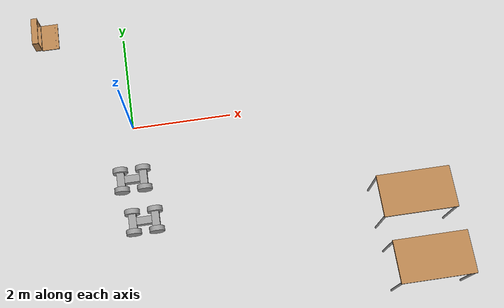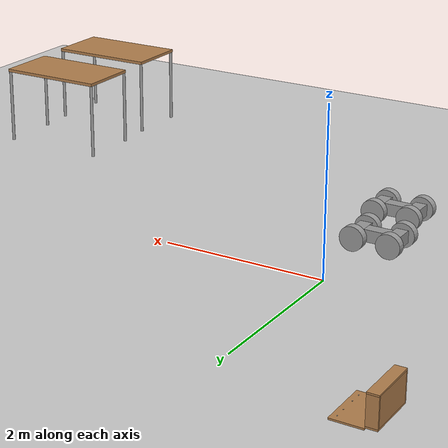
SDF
<sdf version="1.6">
 <world name="default">
  <model name="ground_plane">
   <static>1</static>
   <link name="link">
    <collision name="collision">
     <geometry><plane><normal>0 0 1</normal><size>100 100</size></plane></geometry>
     <surface><friction><ode><mu>100</mu><mu2>50</mu2></ode></friction></surface>
    </collision>
    <visual name="visual">
     <cast_shadows>0</cast_shadows>
     <geometry><plane><normal>0 0 1</normal><size>100 100</size></plane></geometry>
     <material>
      <script><uri>file://media/materials/scripts/gazebo.material</uri><name>Gazebo/Grey</name></script>
     </material>
    </visual>
   </link>
  </model>
  <model name="robot">
   <link name="link_0">
    <pose>-0.225 0 0 0 -0 0</pose>
    <inertial>
     <mass>1</mass>
     <inertia>
      <ixx>0.166667</ixx>
      <ixy>0</ixy>
      <ixz>0</ixz>
      <iyy>0.166667</iyy>
      <iyz>0</iyz>
      <izz>0.166667</izz>
     </inertia>
    </inertial>
    <visual name="visual">
     <geometry><box><size>0.15 0.3 0.15</size></box></geometry>
     <material>
      <lighting>1</lighting>
      <script><uri>file://media/materials/scripts/gazebo.material</uri><name>Gazebo/Grey</name></script>
      <ambient>0.3 0.3 0.3 1</ambient>
      <diffuse>0.7 0.7 0.7 1</diffuse>
      <specular>0.01 0.01 0.01 1</specular>
      <emissive>0 0 0 1</emissive>
      <shader type="vertex"><normal_map>__default__</normal_map></shader>
     </material>
    </visual>
    <collision name="collision">
     <geometry><box><size>0.15 0.3 0.15</size></box></geometry>
     <surface>
      <friction>
       <ode><mu>1</mu><mu2>1</mu2><fdir1>0 0 0</fdir1><slip1>0</slip1><slip2>0</slip2></ode>
       <torsional>
        <coefficient>1</coefficient>
        <patch_radius>0</patch_radius>
        <surface_radius>0</surface_radius>
        <use_patch_radius>1</use_patch_radius>
        <ode><slip>0</slip></ode>
       </torsional>
      </friction>
      <bounce><restitution_coefficient>0</restitution_coefficient><threshold>1e+06</threshold></bounce>
      <contact>
       <collide_without_contact>0</collide_without_contact>
       <collide_without_contact_bitmask>1</collide_without_contact_bitmask>
       <collide_bitmask>1</collide_bitmask>
       <ode>
        <soft_cfm>0</soft_cfm>
        <soft_erp>0.2</soft_erp>
        <kp>1e+13</kp>
        <kd>1</kd>
        <max_vel>0.01</max_vel>
        <min_depth>0</min_depth>
       </ode>
       <bullet>
        <split_impulse>1</split_impulse>
        <split_impulse_penetration_threshold>-0.01</split_impulse_penetration_threshold>
        <soft_cfm>0</soft_cfm>
        <soft_erp>0.2</soft_erp>
        <kp>1e+13</kp>
        <kd>1</kd>
       </bullet>
      </contact>
     </surface>
    </collision>
   </link>
   <link name="link_0_clone">
    <pose>0.225 0 0 0 -0 0</pose>
    <inertial>
     <mass>1</mass>
     <inertia>
      <ixx>0.166667</ixx>
      <ixy>0</ixy>
      <ixz>0</ixz>
      <iyy>0.166667</iyy>
      <iyz>0</iyz>
      <izz>0.166667</izz>
     </inertia>
    </inertial>
    <visual name="visual">
     <geometry><box><size>0.15 0.3 0.15</size></box></geometry>
     <material>
      <lighting>1</lighting>
      <script><uri>file://media/materials/scripts/gazebo.material</uri><name>Gazebo/Grey</name></script>
      <ambient>0.3 0.3 0.3 1</ambient>
      <diffuse>0.7 0.7 0.7 1</diffuse>
      <specular>0.01 0.01 0.01 1</specular>
      <emissive>0 0 0 1</emissive>
      <shader type="vertex"><normal_map>__default__</normal_map></shader>
     </material>
    </visual>
    <collision name="collision">
     <geometry><box><size>0.15 0.3 0.15</size></box></geometry>
     <surface>
      <friction>
       <ode><mu>1</mu><mu2>1</mu2><fdir1>0 0 0</fdir1><slip1>0</slip1><slip2>0</slip2></ode>
       <torsional>
        <coefficient>1</coefficient>
        <patch_radius>0</patch_radius>
        <surface_radius>0</surface_radius>
        <use_patch_radius>1</use_patch_radius>
        <ode><slip>0</slip></ode>
       </torsional>
      </friction>
      <bounce><restitution_coefficient>0</restitution_coefficient><threshold>1e+06</threshold></bounce>
      <contact>
       <collide_without_contact>0</collide_without_contact>
       <collide_without_contact_bitmask>1</collide_without_contact_bitmask>
       <collide_bitmask>1</collide_bitmask>
       <ode>
        <soft_cfm>0</soft_cfm>
        <soft_erp>0.2</soft_erp>
        <kp>1e+13</kp>
        <kd>1</kd>
        <max_vel>0.01</max_vel>
        <min_depth>0</min_depth>
       </ode>
       <bullet>
        <split_impulse>1</split_impulse>
        <split_impulse_penetration_threshold>-0.01</split_impulse_penetration_threshold>
        <soft_cfm>0</soft_cfm>
        <soft_erp>0.2</soft_erp>
        <kp>1e+13</kp>
        <kd>1</kd>
       </bullet>
      </contact>
     </surface>
    </collision>
   </link>
   <link name="link_1">
    <inertial>
     <mass>1</mass>
     <inertia>
      <ixx>0.166667</ixx>
      <ixy>0</ixy>
      <ixz>0</ixz>
      <iyy>0.166667</iyy>
      <iyz>0</iyz>
      <izz>0.166667</izz>
     </inertia>
    </inertial>
    <visual name="visual">
     <geometry><box><size>0.3 0.15 0.15</size></box></geometry>
     <material>
      <lighting>1</lighting>
      <script><uri>file://media/materials/scripts/gazebo.material</uri><name>Gazebo/Grey</name></script>
      <ambient>0.3 0.3 0.3 1</ambient>
      <diffuse>0.7 0.7 0.7 1</diffuse>
      <specular>0.01 0.01 0.01 1</specular>
      <emissive>0 0 0 1</emissive>
      <shader type="vertex"><normal_map>__default__</normal_map></shader>
     </material>
    </visual>
    <collision name="collision">
     <geometry><box><size>0.3 0.15 0.15</size></box></geometry>
     <surface>
      <friction>
       <ode><mu>1</mu><mu2>1</mu2><fdir1>0 0 0</fdir1><slip1>0</slip1><slip2>0</slip2></ode>
       <torsional>
        <coefficient>1</coefficient>
        <patch_radius>0</patch_radius>
        <surface_radius>0</surface_radius>
        <use_patch_radius>1</use_patch_radius>
        <ode><slip>0</slip></ode>
       </torsional>
      </friction>
      <bounce><restitution_coefficient>0</restitution_coefficient><threshold>1e+06</threshold></bounce>
      <contact>
       <collide_without_contact>0</collide_without_contact>
       <collide_without_contact_bitmask>1</collide_without_contact_bitmask>
       <collide_bitmask>1</collide_bitmask>
       <ode>
        <soft_cfm>0</soft_cfm>
        <soft_erp>0.2</soft_erp>
        <kp>1e+13</kp>
        <kd>1</kd>
        <max_vel>0.01</max_vel>
        <min_depth>0</min_depth>
       </ode>
       <bullet>
        <split_impulse>1</split_impulse>
        <split_impulse_penetration_threshold>-0.01</split_impulse_penetration_threshold>
        <soft_cfm>0</soft_cfm>
        <soft_erp>0.2</soft_erp>
        <kp>1e+13</kp>
        <kd>1</kd>
       </bullet>
      </contact>
     </surface>
    </collision>
   </link>
   <link name="link_2">
    <pose>-0.225 -0.200001 0 1.5708 -0 0</pose>
    <inertial>
     <mass>1</mass>
     <inertia><ixx>0.145833</ixx><ixy>0</ixy><ixz>0</ixz><iyy>0.145833</iyy><iyz>0</iyz><izz>0.125</izz></inertia>
    </inertial>
    <visual name="visual">
     <geometry><cylinder><radius>0.15</radius><length>0.1</length></cylinder></geometry>
     <material>
      <lighting>1</lighting>
      <script><uri>file://media/materials/scripts/gazebo.material</uri><name>Gazebo/Grey</name></script>
      <ambient>0.3 0.3 0.3 1</ambient>
      <diffuse>0.7 0.7 0.7 1</diffuse>
      <specular>0.01 0.01 0.01 1</specular>
      <emissive>0 0 0 1</emissive>
      <shader type="vertex"><normal_map>__default__</normal_map></shader>
     </material>
    </visual>
    <collision name="collision">
     <geometry><cylinder><radius>0.15</radius><length>0.1</length></cylinder></geometry>
     <surface>
      <friction>
       <ode><mu>1</mu><mu2>1</mu2><fdir1>0 0 0</fdir1><slip1>0</slip1><slip2>0</slip2></ode>
       <torsional>
        <coefficient>1</coefficient>
        <patch_radius>0</patch_radius>
        <surface_radius>0</surface_radius>
        <use_patch_radius>1</use_patch_radius>
        <ode><slip>0</slip></ode>
       </torsional>
      </friction>
      <bounce><restitution_coefficient>0</restitution_coefficient><threshold>1e+06</threshold></bounce>
      <contact>
       <collide_without_contact>0</collide_without_contact>
       <collide_without_contact_bitmask>1</collide_without_contact_bitmask>
       <collide_bitmask>1</collide_bitmask>
       <ode>
        <soft_cfm>0</soft_cfm>
        <soft_erp>0.2</soft_erp>
        <kp>1e+13</kp>
        <kd>1</kd>
        <max_vel>0.01</max_vel>
        <min_depth>0</min_depth>
       </ode>
       <bullet>
        <split_impulse>1</split_impulse>
        <split_impulse_penetration_threshold>-0.01</split_impulse_penetration_threshold>
        <soft_cfm>0</soft_cfm>
        <soft_erp>0.2</soft_erp>
        <kp>1e+13</kp>
        <kd>1</kd>
       </bullet>
      </contact>
     </surface>
    </collision>
   </link>
   <link name="link_2_clone">
    <pose>0.225 -0.200001 0 1.5708 -0 0</pose>
    <inertial>
     <mass>1</mass>
     <inertia><ixx>0.145833</ixx><ixy>0</ixy><ixz>0</ixz><iyy>0.145833</iyy><iyz>0</iyz><izz>0.125</izz></inertia>
    </inertial>
    <visual name="visual">
     <geometry><cylinder><radius>0.15</radius><length>0.1</length></cylinder></geometry>
     <material>
      <lighting>1</lighting>
      <script><uri>file://media/materials/scripts/gazebo.material</uri><name>Gazebo/Grey</name></script>
      <ambient>0.3 0.3 0.3 1</ambient>
      <diffuse>0.7 0.7 0.7 1</diffuse>
      <specular>0.01 0.01 0.01 1</specular>
      <emissive>0 0 0 1</emissive>
      <shader type="vertex"><normal_map>__default__</normal_map></shader>
     </material>
    </visual>
    <collision name="collision">
     <geometry><cylinder><radius>0.15</radius><length>0.1</length></cylinder></geometry>
     <surface>
      <friction>
       <ode><mu>1</mu><mu2>1</mu2><fdir1>0 0 0</fdir1><slip1>0</slip1><slip2>0</slip2></ode>
       <torsional>
        <coefficient>1</coefficient>
        <patch_radius>0</patch_radius>
        <surface_radius>0</surface_radius>
        <use_patch_radius>1</use_patch_radius>
        <ode><slip>0</slip></ode>
       </torsional>
      </friction>
      <bounce><restitution_coefficient>0</restitution_coefficient><threshold>1e+06</threshold></bounce>
      <contact>
       <collide_without_contact>0</collide_without_contact>
       <collide_without_contact_bitmask>1</collide_without_contact_bitmask>
       <collide_bitmask>1</collide_bitmask>
       <ode>
        <soft_cfm>0</soft_cfm>
        <soft_erp>0.2</soft_erp>
        <kp>1e+13</kp>
        <kd>1</kd>
        <max_vel>0.01</max_vel>
        <min_depth>0</min_depth>
       </ode>
       <bullet>
        <split_impulse>1</split_impulse>
        <split_impulse_penetration_threshold>-0.01</split_impulse_penetration_threshold>
        <soft_cfm>0</soft_cfm>
        <soft_erp>0.2</soft_erp>
        <kp>1e+13</kp>
        <kd>1</kd>
       </bullet>
      </contact>
     </surface>
    </collision>
   </link>
   <link name="link_2_clone_0">
    <pose>-0.225 0.200001 0 1.5708 -0 0</pose>
    <inertial>
     <mass>1</mass>
     <inertia><ixx>0.145833</ixx><ixy>0</ixy><ixz>0</ixz><iyy>0.145833</iyy><iyz>0</iyz><izz>0.125</izz></inertia>
    </inertial>
    <visual name="visual">
     <geometry><cylinder><radius>0.15</radius><length>0.1</length></cylinder></geometry>
     <material>
      <lighting>1</lighting>
      <script><uri>file://media/materials/scripts/gazebo.material</uri><name>Gazebo/Grey</name></script>
      <ambient>0.3 0.3 0.3 1</ambient>
      <diffuse>0.7 0.7 0.7 1</diffuse>
      <specular>0.01 0.01 0.01 1</specular>
      <emissive>0 0 0 1</emissive>
      <shader type="vertex"><normal_map>__default__</normal_map></shader>
     </material>
    </visual>
    <collision name="collision">
     <geometry><cylinder><radius>0.15</radius><length>0.1</length></cylinder></geometry>
     <surface>
      <friction>
       <ode><mu>1</mu><mu2>1</mu2><fdir1>0 0 0</fdir1><slip1>0</slip1><slip2>0</slip2></ode>
       <torsional>
        <coefficient>1</coefficient>
        <patch_radius>0</patch_radius>
        <surface_radius>0</surface_radius>
        <use_patch_radius>1</use_patch_radius>
        <ode><slip>0</slip></ode>
       </torsional>
      </friction>
      <bounce><restitution_coefficient>0</restitution_coefficient><threshold>1e+06</threshold></bounce>
      <contact>
       <collide_without_contact>0</collide_without_contact>
       <collide_without_contact_bitmask>1</collide_without_contact_bitmask>
       <collide_bitmask>1</collide_bitmask>
       <ode>
        <soft_cfm>0</soft_cfm>
        <soft_erp>0.2</soft_erp>
        <kp>1e+13</kp>
        <kd>1</kd>
        <max_vel>0.01</max_vel>
        <min_depth>0</min_depth>
       </ode>
       <bullet>
        <split_impulse>1</split_impulse>
        <split_impulse_penetration_threshold>-0.01</split_impulse_penetration_threshold>
        <soft_cfm>0</soft_cfm>
        <soft_erp>0.2</soft_erp>
        <kp>1e+13</kp>
        <kd>1</kd>
       </bullet>
      </contact>
     </surface>
    </collision>
   </link>
   <link name="link_2_clone_1">
    <pose>0.225 0.200001 0 1.5708 -0 0</pose>
    <inertial>
     <mass>1</mass>
     <inertia><ixx>0.145833</ixx><ixy>0</ixy><ixz>0</ixz><iyy>0.145833</iyy><iyz>0</iyz><izz>0.125</izz></inertia>
    </inertial>
    <visual name="visual">
     <geometry><cylinder><radius>0.15</radius><length>0.1</length></cylinder></geometry>
     <material>
      <lighting>1</lighting>
      <script><uri>file://media/materials/scripts/gazebo.material</uri><name>Gazebo/Grey</name></script>
      <ambient>0.3 0.3 0.3 1</ambient>
      <diffuse>0.7 0.7 0.7 1</diffuse>
      <specular>0.01 0.01 0.01 1</specular>
      <emissive>0 0 0 1</emissive>
      <shader type="vertex"><normal_map>__default__</normal_map></shader>
     </material>
    </visual>
    <collision name="collision">
     <geometry><cylinder><radius>0.15</radius><length>0.1</length></cylinder></geometry>
     <surface>
      <friction>
       <ode><mu>1</mu><mu2>1</mu2><fdir1>0 0 0</fdir1><slip1>0</slip1><slip2>0</slip2></ode>
       <torsional>
        <coefficient>1</coefficient>
        <patch_radius>0</patch_radius>
        <surface_radius>0</surface_radius>
        <use_patch_radius>1</use_patch_radius>
        <ode><slip>0</slip></ode>
       </torsional>
      </friction>
      <bounce><restitution_coefficient>0</restitution_coefficient><threshold>1e+06</threshold></bounce>
      <contact>
       <collide_without_contact>0</collide_without_contact>
       <collide_without_contact_bitmask>1</collide_without_contact_bitmask>
       <collide_bitmask>1</collide_bitmask>
       <ode>
        <soft_cfm>0</soft_cfm>
        <soft_erp>0.2</soft_erp>
        <kp>1e+13</kp>
        <kd>1</kd>
        <max_vel>0.01</max_vel>
        <min_depth>0</min_depth>
       </ode>
       <bullet>
        <split_impulse>1</split_impulse>
        <split_impulse_penetration_threshold>-0.01</split_impulse_penetration_threshold>
        <soft_cfm>0</soft_cfm>
        <soft_erp>0.2</soft_erp>
        <kp>1e+13</kp>
        <kd>1</kd>
       </bullet>
      </contact>
     </surface>
    </collision>
   </link>
   <joint name="link_0_JOINT_1" type="fixed">
    <parent>link_0</parent>
    <child>link_1</child>
    <physics>
     <ode><limit><cfm>0</cfm><erp>0.2</erp></limit><suspension><cfm>0</cfm><erp>0.2</erp></suspension></ode>
    </physics>
   </joint>
   <joint name="link_0_JOINT_3" type="revolute">
    <parent>link_0</parent>
    <child>link_2</child>
    <axis>
     <xyz>1 0 0</xyz>
     <use_parent_model_frame>0</use_parent_model_frame>
     <limit>
      <lower>-1.79769e+308</lower>
      <upper>1.79769e+308</upper>
      <effort>-1</effort>
      <velocity>-1</velocity>
     </limit>
     <dynamics>
      <spring_reference>0</spring_reference>
      <spring_stiffness>0</spring_stiffness>
      <damping>0</damping>
     </dynamics>
    </axis>
    <physics>
     <ode><limit><cfm>0</cfm><erp>0.2</erp></limit><suspension><cfm>0</cfm><erp>0.2</erp></suspension></ode>
    </physics>
   </joint>
   <joint name="link_0_JOINT_5" type="revolute">
    <parent>link_0</parent>
    <child>link_2_clone_0</child>
    <axis>
     <xyz>1 0 0</xyz>
     <use_parent_model_frame>0</use_parent_model_frame>
     <limit>
      <lower>-1.79769e+308</lower>
      <upper>1.79769e+308</upper>
      <effort>-1</effort>
      <velocity>-1</velocity>
     </limit>
     <dynamics>
      <spring_reference>0</spring_reference>
      <spring_stiffness>0</spring_stiffness>
      <damping>0</damping>
     </dynamics>
    </axis>
    <physics>
     <ode><limit><cfm>0</cfm><erp>0.2</erp></limit><suspension><cfm>0</cfm><erp>0.2</erp></suspension></ode>
    </physics>
   </joint>
   <joint name="link_0_clone_JOINT_4" type="revolute">
    <parent>link_0_clone</parent>
    <child>link_2_clone</child>
    <axis>
     <xyz>1 0 0</xyz>
     <use_parent_model_frame>0</use_parent_model_frame>
     <limit>
      <lower>-1.79769e+308</lower>
      <upper>1.79769e+308</upper>
      <effort>-1</effort>
      <velocity>-1</velocity>
     </limit>
     <dynamics>
      <spring_reference>0</spring_reference>
      <spring_stiffness>0</spring_stiffness>
      <damping>0</damping>
     </dynamics>
    </axis>
    <physics>
     <ode><limit><cfm>0</cfm><erp>0.2</erp></limit><suspension><cfm>0</cfm><erp>0.2</erp></suspension></ode>
    </physics>
   </joint>
   <joint name="link_0_clone_JOINT_6" type="revolute">
    <parent>link_0_clone</parent>
    <child>link_2_clone_1</child>
    <axis>
     <xyz>1 0 0</xyz>
     <use_parent_model_frame>0</use_parent_model_frame>
     <limit>
      <lower>-1.79769e+308</lower>
      <upper>1.79769e+308</upper>
      <effort>-1</effort>
      <velocity>-1</velocity>
     </limit>
     <dynamics>
      <spring_reference>0</spring_reference>
      <spring_stiffness>0</spring_stiffness>
      <damping>0</damping>
     </dynamics>
    </axis>
    <physics>
     <ode><limit><cfm>0</cfm><erp>0.2</erp></limit><suspension><cfm>0</cfm><erp>0.2</erp></suspension></ode>
    </physics>
   </joint>
   <joint name="link_1_JOINT_2" type="fixed">
    <parent>link_1</parent>
    <child>link_0_clone</child>
    <physics>
     <ode><limit><cfm>0</cfm><erp>0.2</erp></limit><suspension><cfm>0</cfm><erp>0.2</erp></suspension></ode>
    </physics>
   </joint>
   <static>0</static>
   <pose>0.033407 -2.00112 0.15 0 0 -0.000604</pose>
  </model>
  <model name="robot_0">
   <link name="link_0">
    <pose>-0.225 0 0 0 -0 0</pose>
    <inertial>
     <mass>1</mass>
     <inertia>
      <ixx>0.166667</ixx>
      <ixy>0</ixy>
      <ixz>0</ixz>
      <iyy>0.166667</iyy>
      <iyz>0</iyz>
      <izz>0.166667</izz>
     </inertia>
    </inertial>
    <visual name="visual">
     <geometry><box><size>0.15 0.3 0.15</size></box></geometry>
     <material>
      <lighting>1</lighting>
      <script><uri>file://media/materials/scripts/gazebo.material</uri><name>Gazebo/Grey</name></script>
      <ambient>0.3 0.3 0.3 1</ambient>
      <diffuse>0.7 0.7 0.7 1</diffuse>
      <specular>0.01 0.01 0.01 1</specular>
      <emissive>0 0 0 1</emissive>
      <shader type="vertex"><normal_map>__default__</normal_map></shader>
     </material>
    </visual>
    <collision name="collision">
     <geometry><box><size>0.15 0.3 0.15</size></box></geometry>
     <surface>
      <friction>
       <ode><mu>1</mu><mu2>1</mu2><fdir1>0 0 0</fdir1><slip1>0</slip1><slip2>0</slip2></ode>
       <torsional>
        <coefficient>1</coefficient>
        <patch_radius>0</patch_radius>
        <surface_radius>0</surface_radius>
        <use_patch_radius>1</use_patch_radius>
        <ode><slip>0</slip></ode>
       </torsional>
      </friction>
      <bounce><restitution_coefficient>0</restitution_coefficient><threshold>1e+06</threshold></bounce>
      <contact>
       <collide_without_contact>0</collide_without_contact>
       <collide_without_contact_bitmask>1</collide_without_contact_bitmask>
       <collide_bitmask>1</collide_bitmask>
       <ode>
        <soft_cfm>0</soft_cfm>
        <soft_erp>0.2</soft_erp>
        <kp>1e+13</kp>
        <kd>1</kd>
        <max_vel>0.01</max_vel>
        <min_depth>0</min_depth>
       </ode>
       <bullet>
        <split_impulse>1</split_impulse>
        <split_impulse_penetration_threshold>-0.01</split_impulse_penetration_threshold>
        <soft_cfm>0</soft_cfm>
        <soft_erp>0.2</soft_erp>
        <kp>1e+13</kp>
        <kd>1</kd>
       </bullet>
      </contact>
     </surface>
    </collision>
   </link>
   <link name="link_0_clone">
    <pose>0.225 0 0 0 -0 0</pose>
    <inertial>
     <mass>1</mass>
     <inertia>
      <ixx>0.166667</ixx>
      <ixy>0</ixy>
      <ixz>0</ixz>
      <iyy>0.166667</iyy>
      <iyz>0</iyz>
      <izz>0.166667</izz>
     </inertia>
    </inertial>
    <visual name="visual">
     <geometry><box><size>0.15 0.3 0.15</size></box></geometry>
     <material>
      <lighting>1</lighting>
      <script><uri>file://media/materials/scripts/gazebo.material</uri><name>Gazebo/Grey</name></script>
      <ambient>0.3 0.3 0.3 1</ambient>
      <diffuse>0.7 0.7 0.7 1</diffuse>
      <specular>0.01 0.01 0.01 1</specular>
      <emissive>0 0 0 1</emissive>
      <shader type="vertex"><normal_map>__default__</normal_map></shader>
     </material>
    </visual>
    <collision name="collision">
     <geometry><box><size>0.15 0.3 0.15</size></box></geometry>
     <surface>
      <friction>
       <ode><mu>1</mu><mu2>1</mu2><fdir1>0 0 0</fdir1><slip1>0</slip1><slip2>0</slip2></ode>
       <torsional>
        <coefficient>1</coefficient>
        <patch_radius>0</patch_radius>
        <surface_radius>0</surface_radius>
        <use_patch_radius>1</use_patch_radius>
        <ode><slip>0</slip></ode>
       </torsional>
      </friction>
      <bounce><restitution_coefficient>0</restitution_coefficient><threshold>1e+06</threshold></bounce>
      <contact>
       <collide_without_contact>0</collide_without_contact>
       <collide_without_contact_bitmask>1</collide_without_contact_bitmask>
       <collide_bitmask>1</collide_bitmask>
       <ode>
        <soft_cfm>0</soft_cfm>
        <soft_erp>0.2</soft_erp>
        <kp>1e+13</kp>
        <kd>1</kd>
        <max_vel>0.01</max_vel>
        <min_depth>0</min_depth>
       </ode>
       <bullet>
        <split_impulse>1</split_impulse>
        <split_impulse_penetration_threshold>-0.01</split_impulse_penetration_threshold>
        <soft_cfm>0</soft_cfm>
        <soft_erp>0.2</soft_erp>
        <kp>1e+13</kp>
        <kd>1</kd>
       </bullet>
      </contact>
     </surface>
    </collision>
   </link>
   <link name="link_1">
    <inertial>
     <mass>1</mass>
     <inertia>
      <ixx>0.166667</ixx>
      <ixy>0</ixy>
      <ixz>0</ixz>
      <iyy>0.166667</iyy>
      <iyz>0</iyz>
      <izz>0.166667</izz>
     </inertia>
    </inertial>
    <visual name="visual">
     <geometry><box><size>0.3 0.15 0.15</size></box></geometry>
     <material>
      <lighting>1</lighting>
      <script><uri>file://media/materials/scripts/gazebo.material</uri><name>Gazebo/Grey</name></script>
      <ambient>0.3 0.3 0.3 1</ambient>
      <diffuse>0.7 0.7 0.7 1</diffuse>
      <specular>0.01 0.01 0.01 1</specular>
      <emissive>0 0 0 1</emissive>
      <shader type="vertex"><normal_map>__default__</normal_map></shader>
     </material>
    </visual>
    <collision name="collision">
     <geometry><box><size>0.3 0.15 0.15</size></box></geometry>
     <surface>
      <friction>
       <ode><mu>1</mu><mu2>1</mu2><fdir1>0 0 0</fdir1><slip1>0</slip1><slip2>0</slip2></ode>
       <torsional>
        <coefficient>1</coefficient>
        <patch_radius>0</patch_radius>
        <surface_radius>0</surface_radius>
        <use_patch_radius>1</use_patch_radius>
        <ode><slip>0</slip></ode>
       </torsional>
      </friction>
      <bounce><restitution_coefficient>0</restitution_coefficient><threshold>1e+06</threshold></bounce>
      <contact>
       <collide_without_contact>0</collide_without_contact>
       <collide_without_contact_bitmask>1</collide_without_contact_bitmask>
       <collide_bitmask>1</collide_bitmask>
       <ode>
        <soft_cfm>0</soft_cfm>
        <soft_erp>0.2</soft_erp>
        <kp>1e+13</kp>
        <kd>1</kd>
        <max_vel>0.01</max_vel>
        <min_depth>0</min_depth>
       </ode>
       <bullet>
        <split_impulse>1</split_impulse>
        <split_impulse_penetration_threshold>-0.01</split_impulse_penetration_threshold>
        <soft_cfm>0</soft_cfm>
        <soft_erp>0.2</soft_erp>
        <kp>1e+13</kp>
        <kd>1</kd>
       </bullet>
      </contact>
     </surface>
    </collision>
   </link>
   <link name="link_2">
    <pose>-0.225 -0.200001 0 1.5708 -0 0</pose>
    <inertial>
     <mass>1</mass>
     <inertia><ixx>0.145833</ixx><ixy>0</ixy><ixz>0</ixz><iyy>0.145833</iyy><iyz>0</iyz><izz>0.125</izz></inertia>
    </inertial>
    <visual name="visual">
     <geometry><cylinder><radius>0.15</radius><length>0.1</length></cylinder></geometry>
     <material>
      <lighting>1</lighting>
      <script><uri>file://media/materials/scripts/gazebo.material</uri><name>Gazebo/Grey</name></script>
      <ambient>0.3 0.3 0.3 1</ambient>
      <diffuse>0.7 0.7 0.7 1</diffuse>
      <specular>0.01 0.01 0.01 1</specular>
      <emissive>0 0 0 1</emissive>
      <shader type="vertex"><normal_map>__default__</normal_map></shader>
     </material>
    </visual>
    <collision name="collision">
     <geometry><cylinder><radius>0.15</radius><length>0.1</length></cylinder></geometry>
     <surface>
      <friction>
       <ode><mu>1</mu><mu2>1</mu2><fdir1>0 0 0</fdir1><slip1>0</slip1><slip2>0</slip2></ode>
       <torsional>
        <coefficient>1</coefficient>
        <patch_radius>0</patch_radius>
        <surface_radius>0</surface_radius>
        <use_patch_radius>1</use_patch_radius>
        <ode><slip>0</slip></ode>
       </torsional>
      </friction>
      <bounce><restitution_coefficient>0</restitution_coefficient><threshold>1e+06</threshold></bounce>
      <contact>
       <collide_without_contact>0</collide_without_contact>
       <collide_without_contact_bitmask>1</collide_without_contact_bitmask>
       <collide_bitmask>1</collide_bitmask>
       <ode>
        <soft_cfm>0</soft_cfm>
        <soft_erp>0.2</soft_erp>
        <kp>1e+13</kp>
        <kd>1</kd>
        <max_vel>0.01</max_vel>
        <min_depth>0</min_depth>
       </ode>
       <bullet>
        <split_impulse>1</split_impulse>
        <split_impulse_penetration_threshold>-0.01</split_impulse_penetration_threshold>
        <soft_cfm>0</soft_cfm>
        <soft_erp>0.2</soft_erp>
        <kp>1e+13</kp>
        <kd>1</kd>
       </bullet>
      </contact>
     </surface>
    </collision>
   </link>
   <link name="link_2_clone">
    <pose>0.225 -0.200001 0 1.5708 -0 0</pose>
    <inertial>
     <mass>1</mass>
     <inertia><ixx>0.145833</ixx><ixy>0</ixy><ixz>0</ixz><iyy>0.145833</iyy><iyz>0</iyz><izz>0.125</izz></inertia>
    </inertial>
    <visual name="visual">
     <geometry><cylinder><radius>0.15</radius><length>0.1</length></cylinder></geometry>
     <material>
      <lighting>1</lighting>
      <script><uri>file://media/materials/scripts/gazebo.material</uri><name>Gazebo/Grey</name></script>
      <ambient>0.3 0.3 0.3 1</ambient>
      <diffuse>0.7 0.7 0.7 1</diffuse>
      <specular>0.01 0.01 0.01 1</specular>
      <emissive>0 0 0 1</emissive>
      <shader type="vertex"><normal_map>__default__</normal_map></shader>
     </material>
    </visual>
    <collision name="collision">
     <geometry><cylinder><radius>0.15</radius><length>0.1</length></cylinder></geometry>
     <surface>
      <friction>
       <ode><mu>1</mu><mu2>1</mu2><fdir1>0 0 0</fdir1><slip1>0</slip1><slip2>0</slip2></ode>
       <torsional>
        <coefficient>1</coefficient>
        <patch_radius>0</patch_radius>
        <surface_radius>0</surface_radius>
        <use_patch_radius>1</use_patch_radius>
        <ode><slip>0</slip></ode>
       </torsional>
      </friction>
      <bounce><restitution_coefficient>0</restitution_coefficient><threshold>1e+06</threshold></bounce>
      <contact>
       <collide_without_contact>0</collide_without_contact>
       <collide_without_contact_bitmask>1</collide_without_contact_bitmask>
       <collide_bitmask>1</collide_bitmask>
       <ode>
        <soft_cfm>0</soft_cfm>
        <soft_erp>0.2</soft_erp>
        <kp>1e+13</kp>
        <kd>1</kd>
        <max_vel>0.01</max_vel>
        <min_depth>0</min_depth>
       </ode>
       <bullet>
        <split_impulse>1</split_impulse>
        <split_impulse_penetration_threshold>-0.01</split_impulse_penetration_threshold>
        <soft_cfm>0</soft_cfm>
        <soft_erp>0.2</soft_erp>
        <kp>1e+13</kp>
        <kd>1</kd>
       </bullet>
      </contact>
     </surface>
    </collision>
   </link>
   <link name="link_2_clone_0">
    <pose>-0.225 0.200001 0 1.5708 -0 0</pose>
    <inertial>
     <mass>1</mass>
     <inertia><ixx>0.145833</ixx><ixy>0</ixy><ixz>0</ixz><iyy>0.145833</iyy><iyz>0</iyz><izz>0.125</izz></inertia>
    </inertial>
    <visual name="visual">
     <geometry><cylinder><radius>0.15</radius><length>0.1</length></cylinder></geometry>
     <material>
      <lighting>1</lighting>
      <script><uri>file://media/materials/scripts/gazebo.material</uri><name>Gazebo/Grey</name></script>
      <ambient>0.3 0.3 0.3 1</ambient>
      <diffuse>0.7 0.7 0.7 1</diffuse>
      <specular>0.01 0.01 0.01 1</specular>
      <emissive>0 0 0 1</emissive>
      <shader type="vertex"><normal_map>__default__</normal_map></shader>
     </material>
    </visual>
    <collision name="collision">
     <geometry><cylinder><radius>0.15</radius><length>0.1</length></cylinder></geometry>
     <surface>
      <friction>
       <ode><mu>1</mu><mu2>1</mu2><fdir1>0 0 0</fdir1><slip1>0</slip1><slip2>0</slip2></ode>
       <torsional>
        <coefficient>1</coefficient>
        <patch_radius>0</patch_radius>
        <surface_radius>0</surface_radius>
        <use_patch_radius>1</use_patch_radius>
        <ode><slip>0</slip></ode>
       </torsional>
      </friction>
      <bounce><restitution_coefficient>0</restitution_coefficient><threshold>1e+06</threshold></bounce>
      <contact>
       <collide_without_contact>0</collide_without_contact>
       <collide_without_contact_bitmask>1</collide_without_contact_bitmask>
       <collide_bitmask>1</collide_bitmask>
       <ode>
        <soft_cfm>0</soft_cfm>
        <soft_erp>0.2</soft_erp>
        <kp>1e+13</kp>
        <kd>1</kd>
        <max_vel>0.01</max_vel>
        <min_depth>0</min_depth>
       </ode>
       <bullet>
        <split_impulse>1</split_impulse>
        <split_impulse_penetration_threshold>-0.01</split_impulse_penetration_threshold>
        <soft_cfm>0</soft_cfm>
        <soft_erp>0.2</soft_erp>
        <kp>1e+13</kp>
        <kd>1</kd>
       </bullet>
      </contact>
     </surface>
    </collision>
   </link>
   <link name="link_2_clone_1">
    <pose>0.225 0.200001 0 1.5708 -0 0</pose>
    <inertial>
     <mass>1</mass>
     <inertia><ixx>0.145833</ixx><ixy>0</ixy><ixz>0</ixz><iyy>0.145833</iyy><iyz>0</iyz><izz>0.125</izz></inertia>
    </inertial>
    <visual name="visual">
     <geometry><cylinder><radius>0.15</radius><length>0.1</length></cylinder></geometry>
     <material>
      <lighting>1</lighting>
      <script><uri>file://media/materials/scripts/gazebo.material</uri><name>Gazebo/Grey</name></script>
      <ambient>0.3 0.3 0.3 1</ambient>
      <diffuse>0.7 0.7 0.7 1</diffuse>
      <specular>0.01 0.01 0.01 1</specular>
      <emissive>0 0 0 1</emissive>
      <shader type="vertex"><normal_map>__default__</normal_map></shader>
     </material>
    </visual>
    <collision name="collision">
     <geometry><cylinder><radius>0.15</radius><length>0.1</length></cylinder></geometry>
     <surface>
      <friction>
       <ode><mu>1</mu><mu2>1</mu2><fdir1>0 0 0</fdir1><slip1>0</slip1><slip2>0</slip2></ode>
       <torsional>
        <coefficient>1</coefficient>
        <patch_radius>0</patch_radius>
        <surface_radius>0</surface_radius>
        <use_patch_radius>1</use_patch_radius>
        <ode><slip>0</slip></ode>
       </torsional>
      </friction>
      <bounce><restitution_coefficient>0</restitution_coefficient><threshold>1e+06</threshold></bounce>
      <contact>
       <collide_without_contact>0</collide_without_contact>
       <collide_without_contact_bitmask>1</collide_without_contact_bitmask>
       <collide_bitmask>1</collide_bitmask>
       <ode>
        <soft_cfm>0</soft_cfm>
        <soft_erp>0.2</soft_erp>
        <kp>1e+13</kp>
        <kd>1</kd>
        <max_vel>0.01</max_vel>
        <min_depth>0</min_depth>
       </ode>
       <bullet>
        <split_impulse>1</split_impulse>
        <split_impulse_penetration_threshold>-0.01</split_impulse_penetration_threshold>
        <soft_cfm>0</soft_cfm>
        <soft_erp>0.2</soft_erp>
        <kp>1e+13</kp>
        <kd>1</kd>
       </bullet>
      </contact>
     </surface>
    </collision>
   </link>
   <joint name="link_0_JOINT_1" type="fixed">
    <parent>link_0</parent>
    <child>link_1</child>
    <physics>
     <ode><limit><cfm>0</cfm><erp>0.2</erp></limit><suspension><cfm>0</cfm><erp>0.2</erp></suspension></ode>
    </physics>
   </joint>
   <joint name="link_0_JOINT_3" type="revolute">
    <parent>link_0</parent>
    <child>link_2</child>
    <axis>
     <xyz>1 0 0</xyz>
     <use_parent_model_frame>0</use_parent_model_frame>
     <limit>
      <lower>-1.79769e+308</lower>
      <upper>1.79769e+308</upper>
      <effort>-1</effort>
      <velocity>-1</velocity>
     </limit>
     <dynamics>
      <spring_reference>0</spring_reference>
      <spring_stiffness>0</spring_stiffness>
      <damping>0</damping>
     </dynamics>
    </axis>
    <physics>
     <ode><limit><cfm>0</cfm><erp>0.2</erp></limit><suspension><cfm>0</cfm><erp>0.2</erp></suspension></ode>
    </physics>
   </joint>
   <joint name="link_0_JOINT_5" type="revolute">
    <parent>link_0</parent>
    <child>link_2_clone_0</child>
    <axis>
     <xyz>1 0 0</xyz>
     <use_parent_model_frame>0</use_parent_model_frame>
     <limit>
      <lower>-1.79769e+308</lower>
      <upper>1.79769e+308</upper>
      <effort>-1</effort>
      <velocity>-1</velocity>
     </limit>
     <dynamics>
      <spring_reference>0</spring_reference>
      <spring_stiffness>0</spring_stiffness>
      <damping>0</damping>
     </dynamics>
    </axis>
    <physics>
     <ode><limit><cfm>0</cfm><erp>0.2</erp></limit><suspension><cfm>0</cfm><erp>0.2</erp></suspension></ode>
    </physics>
   </joint>
   <joint name="link_0_clone_JOINT_4" type="revolute">
    <parent>link_0_clone</parent>
    <child>link_2_clone</child>
    <axis>
     <xyz>1 0 0</xyz>
     <use_parent_model_frame>0</use_parent_model_frame>
     <limit>
      <lower>-1.79769e+308</lower>
      <upper>1.79769e+308</upper>
      <effort>-1</effort>
      <velocity>-1</velocity>
     </limit>
     <dynamics>
      <spring_reference>0</spring_reference>
      <spring_stiffness>0</spring_stiffness>
      <damping>0</damping>
     </dynamics>
    </axis>
    <physics>
     <ode><limit><cfm>0</cfm><erp>0.2</erp></limit><suspension><cfm>0</cfm><erp>0.2</erp></suspension></ode>
    </physics>
   </joint>
   <joint name="link_0_clone_JOINT_6" type="revolute">
    <parent>link_0_clone</parent>
    <child>link_2_clone_1</child>
    <axis>
     <xyz>1 0 0</xyz>
     <use_parent_model_frame>0</use_parent_model_frame>
     <limit>
      <lower>-1.79769e+308</lower>
      <upper>1.79769e+308</upper>
      <effort>-1</effort>
      <velocity>-1</velocity>
     </limit>
     <dynamics>
      <spring_reference>0</spring_reference>
      <spring_stiffness>0</spring_stiffness>
      <damping>0</damping>
     </dynamics>
    </axis>
    <physics>
     <ode><limit><cfm>0</cfm><erp>0.2</erp></limit><suspension><cfm>0</cfm><erp>0.2</erp></suspension></ode>
    </physics>
   </joint>
   <joint name="link_1_JOINT_2" type="fixed">
    <parent>link_1</parent>
    <child>link_0_clone</child>
    <physics>
     <ode><limit><cfm>0</cfm><erp>0.2</erp></limit><suspension><cfm>0</cfm><erp>0.2</erp></suspension></ode>
    </physics>
   </joint>
   <static>0</static>
   <pose>-0.112792 -1.13248 0.15 0 -1e-06 -0.000535</pose>
  </model>
  <model name="table">
   <static>0</static>
   <link name="link">
    <collision name="surface">
     <pose>0 0 1 0 -0 0</pose>
     <geometry><box><size>1.5 0.8 0.03</size></box></geometry>
     <surface><friction><ode><mu>0.6</mu><mu2>0.6</mu2></ode></friction></surface>
    </collision>
    <visual name="visual1">
     <pose>0 0 1 0 -0 0</pose>
     <geometry><box><size>1.4 0.8 0.04</size></box></geometry>
     <material>
      <script><uri>file://media/materials/scripts/gazebo.material</uri><name>Gazebo/Wood</name></script>
     </material>
    </visual>
    <collision name="front_left_leg">
     <pose>0.68 0.38 0.5 0 -0 0</pose>
     <geometry><cylinder><radius>0.02</radius><length>1</length></cylinder></geometry>
    </collision>
    <visual name="front_left_leg">
     <pose>0.68 0.38 0.5 0 -0 0</pose>
     <geometry><cylinder><radius>0.02</radius><length>1</length></cylinder></geometry>
     <material>
      <script><uri>file://media/materials/scripts/gazebo.material</uri><name>Gazebo/Grey</name></script>
     </material>
    </visual>
    <collision name="front_right_leg">
     <pose>0.68 -0.38 0.5 0 -0 0</pose>
     <geometry><cylinder><radius>0.02</radius><length>1</length></cylinder></geometry>
    </collision>
    <visual name="front_right_leg">
     <pose>0.68 -0.38 0.5 0 -0 0</pose>
     <geometry><cylinder><radius>0.02</radius><length>1</length></cylinder></geometry>
     <material>
      <script><uri>file://media/materials/scripts/gazebo.material</uri><name>Gazebo/Grey</name></script>
     </material>
    </visual>
    <collision name="back_right_leg">
     <pose>-0.68 -0.38 0.5 0 -0 0</pose>
     <geometry><cylinder><radius>0.02</radius><length>1</length></cylinder></geometry>
    </collision>
    <visual name="back_right_leg">
     <pose>-0.68 -0.38 0.5 0 -0 0</pose>
     <geometry><cylinder><radius>0.02</radius><length>1</length></cylinder></geometry>
     <material>
      <script><uri>file://media/materials/scripts/gazebo.material</uri><name>Gazebo/Grey</name></script>
     </material>
    </visual>
    <collision name="back_left_leg">
     <pose>-0.68 0.38 0.5 0 -0 0</pose>
     <geometry><cylinder><radius>0.02</radius><length>1</length></cylinder></geometry>
    </collision>
    <visual name="back_left_leg">
     <pose>-0.68 0.38 0.5 0 -0 0</pose>
     <geometry><cylinder><radius>0.02</radius><length>1</length></cylinder></geometry>
     <material>
      <script><uri>file://media/materials/scripts/gazebo.material</uri><name>Gazebo/Grey</name></script>
     </material>
    </visual>
    <inertial>
     <inertia><ixx>1</ixx><ixy>0</ixy><ixz>0</ixz><iyy>1</iyy><iyz>0</iyz><izz>1</izz></inertia>
     <mass>1</mass>
    </inertial>
   </link>
   <pose>5.18685 -2.37774 -2e-06 0 -0 0</pose>
  </model>
  <model name="table_0">
   <static>0</static>
   <link name="link">
    <collision name="surface">
     <pose>0 0 1 0 -0 0</pose>
     <geometry><box><size>1.5 0.8 0.03</size></box></geometry>
     <surface><friction><ode><mu>0.6</mu><mu2>0.6</mu2></ode></friction></surface>
    </collision>
    <visual name="visual1">
     <pose>0 0 1 0 -0 0</pose>
     <geometry><box><size>1.4 0.8 0.04</size></box></geometry>
     <material>
      <script><uri>file://media/materials/scripts/gazebo.material</uri><name>Gazebo/Wood</name></script>
     </material>
    </visual>
    <collision name="front_left_leg">
     <pose>0.68 0.38 0.5 0 -0 0</pose>
     <geometry><cylinder><radius>0.02</radius><length>1</length></cylinder></geometry>
    </collision>
    <visual name="front_left_leg">
     <pose>0.68 0.38 0.5 0 -0 0</pose>
     <geometry><cylinder><radius>0.02</radius><length>1</length></cylinder></geometry>
     <material>
      <script><uri>file://media/materials/scripts/gazebo.material</uri><name>Gazebo/Grey</name></script>
     </material>
    </visual>
    <collision name="front_right_leg">
     <pose>0.68 -0.38 0.5 0 -0 0</pose>
     <geometry><cylinder><radius>0.02</radius><length>1</length></cylinder></geometry>
    </collision>
    <visual name="front_right_leg">
     <pose>0.68 -0.38 0.5 0 -0 0</pose>
     <geometry><cylinder><radius>0.02</radius><length>1</length></cylinder></geometry>
     <material>
      <script><uri>file://media/materials/scripts/gazebo.material</uri><name>Gazebo/Grey</name></script>
     </material>
    </visual>
    <collision name="back_right_leg">
     <pose>-0.68 -0.38 0.5 0 -0 0</pose>
     <geometry><cylinder><radius>0.02</radius><length>1</length></cylinder></geometry>
    </collision>
    <visual name="back_right_leg">
     <pose>-0.68 -0.38 0.5 0 -0 0</pose>
     <geometry><cylinder><radius>0.02</radius><length>1</length></cylinder></geometry>
     <material>
      <script><uri>file://media/materials/scripts/gazebo.material</uri><name>Gazebo/Grey</name></script>
     </material>
    </visual>
    <collision name="back_left_leg">
     <pose>-0.68 0.38 0.5 0 -0 0</pose>
     <geometry><cylinder><radius>0.02</radius><length>1</length></cylinder></geometry>
    </collision>
    <visual name="back_left_leg">
     <pose>-0.68 0.38 0.5 0 -0 0</pose>
     <geometry><cylinder><radius>0.02</radius><length>1</length></cylinder></geometry>
     <material>
      <script><uri>file://media/materials/scripts/gazebo.material</uri><name>Gazebo/Grey</name></script>
     </material>
    </visual>
    <inertial>
     <inertia><ixx>1</ixx><ixy>0</ixy><ixz>0</ixz><iyy>1</iyy><iyz>0</iyz><izz>1</izz></inertia>
     <mass>1</mass>
    </inertial>
   </link>
   <pose>5.2339 -3.62225 -2e-06 0 -0 0</pose>
  </model>
  <model name="wooden_case_2">
   <link name="base">
    <pose>0 0 0.024 0 -0 0</pose>
    <inertial>
     <pose>-0.022184 0 0.171592 0 -0 0</pose>
     <mass>3.96264</mass>
     <inertia>
      <ixx>0.213536</ixx>
      <ixy>0</ixy>
      <ixz>0.000779377</ixz>
      <iyy>0.0708943</iyy>
      <iyz>0</iyz>
      <izz>0.154604</izz>
     </inertia>
    </inertial>
    <collision name="collision_back">
     <pose>-0.053975 0 0.1778 0 -0 0</pose>
     <geometry><box><size>0.01905 0.5461 0.3175</size></box></geometry>
     <surface>
      <contact>
       <poissons_ratio>0.347</poissons_ratio>
       <elastic_modulus>8.8e+09</elastic_modulus>
       <ode><kp>100000</kp><kd>100</kd><max_vel>100</max_vel><min_depth>0.001</min_depth></ode>
      </contact>
      <friction>
       <torsional>
        <coefficient>1</coefficient>
        <use_patch_radius>0</use_patch_radius>
        <surface_radius>0.01</surface_radius>
       </torsional>
      </friction>
     </surface>
    </collision>
    <visual name="visual_back">
     <pose>-0.053975 0 0.1778 0 -0 0</pose>
     <geometry><box><size>0.01905 0.5461 0.3175</size></box></geometry>
     <material>
      <script><uri>file://media/materials/scripts/gazebo.material</uri><name>Gazebo/Wood</name></script>
     </material>
    </visual>
    <collision name="collision_bottom">
     <pose>0 0 0.009525 0 -0 0</pose>
     <geometry><box><size>0.127 0.5842 0.01905</size></box></geometry>
     <surface>
      <contact>
       <poissons_ratio>0.347</poissons_ratio>
       <elastic_modulus>8.8e+09</elastic_modulus>
       <ode><kp>100000</kp><kd>100</kd><max_vel>100</max_vel><min_depth>0.001</min_depth></ode>
      </contact>
      <friction>
       <torsional>
        <coefficient>1</coefficient>
        <use_patch_radius>0</use_patch_radius>
        <surface_radius>0.01</surface_radius>
       </torsional>
      </friction>
     </surface>
    </collision>
    <visual name="visual_bottom">
     <pose>0 0 0.009525 0 -0 0</pose>
     <geometry><box><size>0.127 0.5842 0.01905</size></box></geometry>
     <material>
      <script><uri>file://media/materials/scripts/gazebo.material</uri><name>Gazebo/Wood</name></script>
     </material>
    </visual>
    <collision name="collision_top">
     <pose>0 0 0.346075 0 -0 0</pose>
     <geometry><box><size>0.127 0.5842 0.01905</size></box></geometry>
     <surface>
      <contact>
       <poissons_ratio>0.347</poissons_ratio>
       <elastic_modulus>8.8e+09</elastic_modulus>
       <ode><kp>100000</kp><kd>100</kd><max_vel>100</max_vel><min_depth>0.001</min_depth></ode>
      </contact>
      <friction>
       <torsional>
        <coefficient>1</coefficient>
        <use_patch_radius>0</use_patch_radius>
        <surface_radius>0.01</surface_radius>
       </torsional>
      </friction>
     </surface>
    </collision>
    <visual name="visual_top">
     <pose>0 0 0.346075 0 -0 0</pose>
     <geometry><box><size>0.127 0.5842 0.01905</size></box></geometry>
     <material>
      <script><uri>file://media/materials/scripts/gazebo.material</uri><name>Gazebo/Wood</name></script>
     </material>
    </visual>
    <collision name="collision_left">
     <pose>0 -0.282575 0.1778 0 -0 0</pose>
     <geometry><box><size>0.127 0.01905 0.3175</size></box></geometry>
     <surface>
      <contact>
       <poissons_ratio>0.347</poissons_ratio>
       <elastic_modulus>8.8e+09</elastic_modulus>
       <ode><kp>100000</kp><kd>100</kd><max_vel>100</max_vel><min_depth>0.001</min_depth></ode>
      </contact>
      <friction>
       <torsional>
        <coefficient>1</coefficient>
        <use_patch_radius>0</use_patch_radius>
        <surface_radius>0.01</surface_radius>
       </torsional>
      </friction>
     </surface>
    </collision>
    <visual name="visual_left">
     <pose>0 -0.282575 0.1778 0 -0 0</pose>
     <geometry><box><size>0.127 0.01905 0.3175</size></box></geometry>
     <material>
      <script><uri>file://media/materials/scripts/gazebo.material</uri><name>Gazebo/Wood</name></script>
     </material>
    </visual>
    <collision name="collision_right">
     <pose>0 0.282575 0.1778 0 -0 0</pose>
     <geometry><box><size>0.127 0.01905 0.3175</size></box></geometry>
     <surface>
      <contact>
       <poissons_ratio>0.347</poissons_ratio>
       <elastic_modulus>8.8e+09</elastic_modulus>
       <ode><kp>100000</kp><kd>100</kd><max_vel>100</max_vel><min_depth>0.001</min_depth></ode>
      </contact>
      <friction>
       <torsional>
        <coefficient>1</coefficient>
        <use_patch_radius>0</use_patch_radius>
        <surface_radius>0.01</surface_radius>
       </torsional>
      </friction>
     </surface>
    </collision>
    <visual name="visual_right">
     <pose>0 0.282575 0.1778 0 -0 0</pose>
     <geometry><box><size>0.127 0.01905 0.3175</size></box></geometry>
     <material>
      <script><uri>file://media/materials/scripts/gazebo.material</uri><name>Gazebo/Wood</name></script>
     </material>
    </visual>
    <collision name="collision_block_left">
     <pose>0.0095 -0.2151 -0.012 0 -0 0</pose>
     <geometry><box><size>0.108 0.05 0.024</size></box></geometry>
     <surface>
      <contact>
       <poissons_ratio>0.347</poissons_ratio>
       <elastic_modulus>8.8e+09</elastic_modulus>
       <ode><kp>100000</kp><kd>100</kd><max_vel>100</max_vel><min_depth>0.001</min_depth></ode>
      </contact>
      <friction>
       <torsional>
        <coefficient>1</coefficient>
        <use_patch_radius>0</use_patch_radius>
        <surface_radius>0.01</surface_radius>
       </torsional>
      </friction>
     </surface>
    </collision>
    <visual name="visual_block_left">
     <pose>0.0095 -0.2151 -0.012 0 -0 0</pose>
     <geometry><box><size>0.108 0.05 0.024</size></box></geometry>
     <material>
      <script><uri>file://media/materials/scripts/gazebo.material</uri><name>Gazebo/Wood</name></script>
     </material>
    </visual>
    <collision name="collision_block_right">
     <pose>0.0095 0.2151 -0.012 0 -0 0</pose>
     <geometry><box><size>0.108 0.05 0.024</size></box></geometry>
     <surface>
      <contact>
       <poissons_ratio>0.347</poissons_ratio>
       <elastic_modulus>8.8e+09</elastic_modulus>
       <ode><kp>100000</kp><kd>100</kd><max_vel>100</max_vel><min_depth>0.001</min_depth></ode>
      </contact>
      <friction>
       <torsional>
        <coefficient>1</coefficient>
        <use_patch_radius>0</use_patch_radius>
        <surface_radius>0.01</surface_radius>
       </torsional>
      </friction>
     </surface>
    </collision>
    <visual name="visual_block_right">
     <pose>0.0095 0.2151 -0.012 0 -0 0</pose>
     <geometry><box><size>0.108 0.05 0.024</size></box></geometry>
     <material>
      <script><uri>file://media/materials/scripts/gazebo.material</uri><name>Gazebo/Wood</name></script>
     </material>
    </visual>
   </link>
   <link name="lid">
    <pose>0.243775 0 0.009525 0 -0 0</pose>
    <inertial>
     <mass>1.97874</mass>
     <inertia>
      <ixx>0.0563367</ixx>
      <ixy>0</ixy>
      <ixz>0</ixz>
      <iyy>0.020911</iyy>
      <iyz>0</iyz>
      <izz>0.0771281</izz>
     </inertia>
    </inertial>
    <collision name="collision">
     <geometry><box><size>0.3556 0.5842 0.01905</size></box></geometry>
     <surface>
      <contact>
       <poissons_ratio>0.347</poissons_ratio>
       <elastic_modulus>8.8e+09</elastic_modulus>
       <ode><kp>100000</kp><kd>100</kd><max_vel>100</max_vel><min_depth>0.001</min_depth></ode>
      </contact>
      <friction>
       <torsional>
        <coefficient>1</coefficient>
        <use_patch_radius>0</use_patch_radius>
        <surface_radius>0.01</surface_radius>
       </torsional>
      </friction>
     </surface>
    </collision>
    <visual name="visual">
     <geometry><box><size>0.3556 0.5842 0.01905</size></box></geometry>
     <material>
      <script><uri>file://media/materials/scripts/gazebo.material</uri><name>Gazebo/Wood</name></script>
     </material>
    </visual>
    <visual name="tee_nut_1">
     <pose>0.122 -0.216 0 0 -0 0</pose>
     <geometry><cylinder><radius>0.00635</radius><length>0.0192405</length></cylinder></geometry>
     <material>
      <script><uri>file://media/materials/scripts/gazebo.material</uri><name>Gazebo/Grey</name></script>
     </material>
    </visual>
    <visual name="tee_nut_2">
     <pose>0.122 -0.088 0 0 -0 0</pose>
     <geometry><cylinder><radius>0.00635</radius><length>0.0192405</length></cylinder></geometry>
     <material>
      <script><uri>file://media/materials/scripts/gazebo.material</uri><name>Gazebo/Grey</name></script>
     </material>
    </visual>
    <visual name="tee_nut_3">
     <pose>0.122 0.088 0 0 -0 0</pose>
     <geometry><cylinder><radius>0.00635</radius><length>0.0192405</length></cylinder></geometry>
     <material>
      <script><uri>file://media/materials/scripts/gazebo.material</uri><name>Gazebo/Grey</name></script>
     </material>
    </visual>
    <visual name="tee_nut_4">
     <pose>0.122 0.216 0 0 -0 0</pose>
     <geometry><cylinder><radius>0.00635</radius><length>0.0192405</length></cylinder></geometry>
     <material>
      <script><uri>file://media/materials/scripts/gazebo.material</uri><name>Gazebo/Grey</name></script>
     </material>
    </visual>
   </link>
   <joint name="lid_hinge" type="revolute">
    <pose>-0.1778 0 0.01905 0 -0 0</pose>
    <parent>base</parent>
    <child>lid</child>
    <axis>
     <xyz>0 1 0</xyz>
     <limit><upper>0.523599</upper><lower>-1.5708</lower></limit>
     <use_parent_model_frame>0</use_parent_model_frame>
     <dynamics><spring_reference>0</spring_reference><spring_stiffness>0</spring_stiffness></dynamics>
    </axis>
   </joint>
   <pose>-1.79364 2.30834 -0.001057 0 -0.000429 0</pose>
  </model>
 </world>
</sdf>
